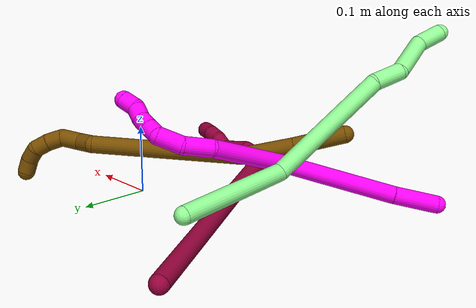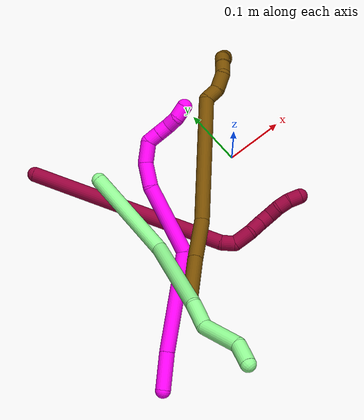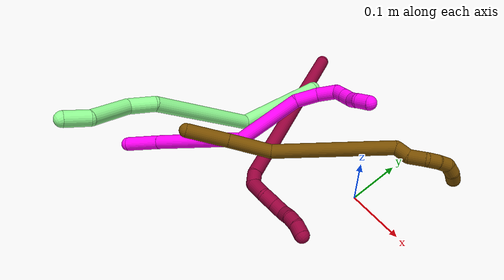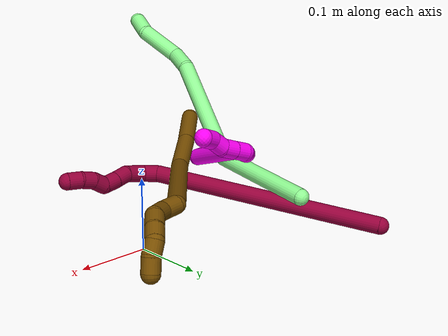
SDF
<sdf version="1.7">
 <world name="default">
  <model name="8">
   <static>0</static>
   <link name="8">
    <collision name="collision-cylinder-e_1_1_4">
     <pose>0.077361 -0.136743 -0.065512 2.01757 0.471779 0.72923</pose>
     <geometry><cylinder><radius>0.0125</radius><length>0.340442</length></cylinder></geometry>
     <surface>
      <friction><ode><mu>1.16</mu><mu2>1.16</mu2><slip1>0</slip1><slip2>0</slip2></ode></friction>
      <contact><ode><kp>1e+06</kp><kd>1</kd><max_vel>0</max_vel><min_depth>0.001</min_depth></ode></contact>
     </surface>
    </collision>
    <visual name="visual-cylinder-e_1_1_4">
     <pose>0.077361 -0.136743 -0.065512 2.01757 0.471779 0.72923</pose>
     <geometry><cylinder><radius>0.0125</radius><length>0.340442</length></cylinder></geometry>
     <material><ambient>0.584314 0 0.227451 1</ambient></material>
    </visual>
    <collision name="collision-cylinder-e_2_4_5">
     <pose>0.158897 -0.280395 -0.138519 2.39689 0.388807 0.93386</pose>
     <geometry><cylinder><radius>0.0125</radius><length>0.022031</length></cylinder></geometry>
     <surface>
      <friction><ode><mu>1.16</mu><mu2>1.16</mu2><slip1>0</slip1><slip2>0</slip2></ode></friction>
      <contact><ode><kp>1e+06</kp><kd>1</kd><max_vel>0</max_vel><min_depth>0.001</min_depth></ode></contact>
     </surface>
    </collision>
    <visual name="visual-cylinder-e_2_4_5">
     <pose>0.158897 -0.280395 -0.138519 2.39689 0.388807 0.93386</pose>
     <geometry><cylinder><radius>0.0125</radius><length>0.022031</length></cylinder></geometry>
     <material><ambient>0.584314 0 0.227451 1</ambient></material>
    </visual>
    <collision name="collision-cylinder-e_3_5_6">
     <pose>0.17007 -0.286715 -0.160014 -3.09963 0.463102 -2.96404</pose>
     <geometry><cylinder><radius>0.0125</radius><length>0.031325</length></cylinder></geometry>
     <surface>
      <friction><ode><mu>1.16</mu><mu2>1.16</mu2><slip1>0</slip1><slip2>0</slip2></ode></friction>
      <contact><ode><kp>1e+06</kp><kd>1</kd><max_vel>0</max_vel><min_depth>0.001</min_depth></ode></contact>
     </surface>
    </collision>
    <visual name="visual-cylinder-e_3_5_6">
     <pose>0.17007 -0.286715 -0.160014 -3.09963 0.463102 -2.96404</pose>
     <geometry><cylinder><radius>0.0125</radius><length>0.031325</length></cylinder></geometry>
     <material><ambient>0.584314 0 0.227451 1</ambient></material>
    </visual>
    <collision name="collision-cylinder-e_4_6_7">
     <pose>0.177823 -0.284603 -0.185403 -3.00855 0.06578 -0.917495</pose>
     <geometry><cylinder><radius>0.0125</radius><length>0.02303</length></cylinder></geometry>
     <surface>
      <friction><ode><mu>1.16</mu><mu2>1.16</mu2><slip1>0</slip1><slip2>0</slip2></ode></friction>
      <contact><ode><kp>1e+06</kp><kd>1</kd><max_vel>0</max_vel><min_depth>0.001</min_depth></ode></contact>
     </surface>
    </collision>
    <visual name="visual-cylinder-e_4_6_7">
     <pose>0.177823 -0.284603 -0.185403 -3.00855 0.06578 -0.917495</pose>
     <geometry><cylinder><radius>0.0125</radius><length>0.02303</length></cylinder></geometry>
     <material><ambient>0.584314 0 0.227451 1</ambient></material>
    </visual>
    <collision name="collision-cylinder-e_5_7_8">
     <pose>0.180022 -0.281955 -0.207766 -3.0395 0.129922 -1.81006</pose>
     <geometry><cylinder><radius>0.0125</radius><length>0.02225</length></cylinder></geometry>
     <surface>
      <friction><ode><mu>1.16</mu><mu2>1.16</mu2><slip1>0</slip1><slip2>0</slip2></ode></friction>
      <contact><ode><kp>1e+06</kp><kd>1</kd><max_vel>0</max_vel><min_depth>0.001</min_depth></ode></contact>
     </surface>
    </collision>
    <visual name="visual-cylinder-e_5_7_8">
     <pose>0.180022 -0.281955 -0.207766 -3.0395 0.129922 -1.81006</pose>
     <geometry><cylinder><radius>0.0125</radius><length>0.02225</length></cylinder></geometry>
     <material><ambient>0.584314 0 0.227451 1</ambient></material>
    </visual>
    <collision name="collision-cylinder-e_6_8_9">
     <pose>0.18902 -0.279809 -0.225497 -2.9915 0.835571 -2.80603</pose>
     <geometry><cylinder><radius>0.0125</radius><length>0.02038</length></cylinder></geometry>
     <surface>
      <friction><ode><mu>1.16</mu><mu2>1.16</mu2><slip1>0</slip1><slip2>0</slip2></ode></friction>
      <contact><ode><kp>1e+06</kp><kd>1</kd><max_vel>0</max_vel><min_depth>0.001</min_depth></ode></contact>
     </surface>
    </collision>
    <visual name="visual-cylinder-e_6_8_9">
     <pose>0.18902 -0.279809 -0.225497 -2.9915 0.835571 -2.80603</pose>
     <geometry><cylinder><radius>0.0125</radius><length>0.02038</length></cylinder></geometry>
     <material><ambient>0.584314 0 0.227451 1</ambient></material>
    </visual>
    <collision name="collision-cylinder-e_7_9_10">
     <pose>0.201617 -0.278927 -0.240933 3.12547 0.526027 3.08172</pose>
     <geometry><cylinder><radius>0.0125</radius><length>0.02007</length></cylinder></geometry>
     <surface>
      <friction><ode><mu>1.16</mu><mu2>1.16</mu2><slip1>0</slip1><slip2>0</slip2></ode></friction>
      <contact><ode><kp>1e+06</kp><kd>1</kd><max_vel>0</max_vel><min_depth>0.001</min_depth></ode></contact>
     </surface>
    </collision>
    <visual name="visual-cylinder-e_7_9_10">
     <pose>0.201617 -0.278927 -0.240933 3.12547 0.526027 3.08172</pose>
     <geometry><cylinder><radius>0.0125</radius><length>0.02007</length></cylinder></geometry>
     <material><ambient>0.584314 0 0.227451 1</ambient></material>
    </visual>
    <collision name="collision-cylinder-e_8_10_2">
     <pose>0.210307 -0.281248 -0.25892 2.91141 0.364824 2.02197</pose>
     <geometry><cylinder><radius>0.0125</radius><length>0.020473</length></cylinder></geometry>
     <surface>
      <friction><ode><mu>1.16</mu><mu2>1.16</mu2><slip1>0</slip1><slip2>0</slip2></ode></friction>
      <contact><ode><kp>1e+06</kp><kd>1</kd><max_vel>0</max_vel><min_depth>0.001</min_depth></ode></contact>
     </surface>
    </collision>
    <visual name="visual-cylinder-e_8_10_2">
     <pose>0.210307 -0.281248 -0.25892 2.91141 0.364824 2.02197</pose>
     <geometry><cylinder><radius>0.0125</radius><length>0.020473</length></cylinder></geometry>
     <material><ambient>0.584314 0 0.227451 1</ambient></material>
    </visual>
    <collision name="collision-sphere-2">
     <pose>0.21396 -0.28343 -0.268231 0 -0 0</pose>
     <geometry><sphere><radius>0.0125</radius></sphere></geometry>
     <surface>
      <friction><ode><mu>1.16</mu><mu2>1.16</mu2><slip1>0</slip1><slip2>0</slip2></ode></friction>
      <contact><ode><kp>1e+06</kp><kd>1</kd><max_vel>0</max_vel><min_depth>0.001</min_depth></ode></contact>
     </surface>
    </collision>
    <visual name="visual-sphere-2">
     <pose>0.21396 -0.28343 -0.268231 0 -0 0</pose>
     <geometry><sphere><radius>0.0125</radius></sphere></geometry>
     <material><ambient>0.584314 0 0.227451 1</ambient></material>
    </visual>
    <collision name="collision-sphere-10">
     <pose>0.206655 -0.279067 -0.24961 0 -0 0</pose>
     <geometry><sphere><radius>0.0125</radius></sphere></geometry>
     <surface>
      <friction><ode><mu>1.16</mu><mu2>1.16</mu2><slip1>0</slip1><slip2>0</slip2></ode></friction>
      <contact><ode><kp>1e+06</kp><kd>1</kd><max_vel>0</max_vel><min_depth>0.001</min_depth></ode></contact>
     </surface>
    </collision>
    <visual name="visual-sphere-10">
     <pose>0.206655 -0.279067 -0.24961 0 -0 0</pose>
     <geometry><sphere><radius>0.0125</radius></sphere></geometry>
     <material><ambient>0.584314 0 0.227451 1</ambient></material>
    </visual>
    <collision name="collision-sphere-9">
     <pose>0.196578 -0.278787 -0.232255 0 -0 0</pose>
     <geometry><sphere><radius>0.0125</radius></sphere></geometry>
     <surface>
      <friction><ode><mu>1.16</mu><mu2>1.16</mu2><slip1>0</slip1><slip2>0</slip2></ode></friction>
      <contact><ode><kp>1e+06</kp><kd>1</kd><max_vel>0</max_vel><min_depth>0.001</min_depth></ode></contact>
     </surface>
    </collision>
    <visual name="visual-sphere-9">
     <pose>0.196578 -0.278787 -0.232255 0 -0 0</pose>
     <geometry><sphere><radius>0.0125</radius></sphere></geometry>
     <material><ambient>0.584314 0 0.227451 1</ambient></material>
    </visual>
    <collision name="collision-sphere-4">
     <pose>0.154721 -0.273486 -0.131024 0 -0 0</pose>
     <geometry><sphere><radius>0.0125</radius></sphere></geometry>
     <surface>
      <friction><ode><mu>1.16</mu><mu2>1.16</mu2><slip1>0</slip1><slip2>0</slip2></ode></friction>
      <contact><ode><kp>1e+06</kp><kd>1</kd><max_vel>0</max_vel><min_depth>0.001</min_depth></ode></contact>
     </surface>
    </collision>
    <visual name="visual-sphere-4">
     <pose>0.154721 -0.273486 -0.131024 0 -0 0</pose>
     <geometry><sphere><radius>0.0125</radius></sphere></geometry>
     <material><ambient>0.584314 0 0.227451 1</ambient></material>
    </visual>
    <collision name="collision-sphere-1">
     <geometry><sphere><radius>0.0125</radius></sphere></geometry>
     <surface>
      <friction><ode><mu>1.16</mu><mu2>1.16</mu2><slip1>0</slip1><slip2>0</slip2></ode></friction>
      <contact><ode><kp>1e+06</kp><kd>1</kd><max_vel>0</max_vel><min_depth>0.001</min_depth></ode></contact>
     </surface>
    </collision>
    <visual name="visual-sphere-1">
     <geometry><sphere><radius>0.0125</radius></sphere></geometry>
     <material><ambient>0.584314 0 0.227451 1</ambient></material>
    </visual>
    <collision name="collision-sphere-8">
     <pose>0.181463 -0.280831 -0.218739 0 -0 0</pose>
     <geometry><sphere><radius>0.0125</radius></sphere></geometry>
     <surface>
      <friction><ode><mu>1.16</mu><mu2>1.16</mu2><slip1>0</slip1><slip2>0</slip2></ode></friction>
      <contact><ode><kp>1e+06</kp><kd>1</kd><max_vel>0</max_vel><min_depth>0.001</min_depth></ode></contact>
     </surface>
    </collision>
    <visual name="visual-sphere-8">
     <pose>0.181463 -0.280831 -0.218739 0 -0 0</pose>
     <geometry><sphere><radius>0.0125</radius></sphere></geometry>
     <material><ambient>0.584314 0 0.227451 1</ambient></material>
    </visual>
    <collision name="collision-sphere-5">
     <pose>0.163073 -0.287303 -0.146014 0 -0 0</pose>
     <geometry><sphere><radius>0.0125</radius></sphere></geometry>
     <surface>
      <friction><ode><mu>1.16</mu><mu2>1.16</mu2><slip1>0</slip1><slip2>0</slip2></ode></friction>
      <contact><ode><kp>1e+06</kp><kd>1</kd><max_vel>0</max_vel><min_depth>0.001</min_depth></ode></contact>
     </surface>
    </collision>
    <visual name="visual-sphere-5">
     <pose>0.163073 -0.287303 -0.146014 0 -0 0</pose>
     <geometry><sphere><radius>0.0125</radius></sphere></geometry>
     <material><ambient>0.584314 0 0.227451 1</ambient></material>
    </visual>
    <collision name="collision-sphere-6">
     <pose>0.177066 -0.286128 -0.174015 0 -0 0</pose>
     <geometry><sphere><radius>0.0125</radius></sphere></geometry>
     <surface>
      <friction><ode><mu>1.16</mu><mu2>1.16</mu2><slip1>0</slip1><slip2>0</slip2></ode></friction>
      <contact><ode><kp>1e+06</kp><kd>1</kd><max_vel>0</max_vel><min_depth>0.001</min_depth></ode></contact>
     </surface>
    </collision>
    <visual name="visual-sphere-6">
     <pose>0.177066 -0.286128 -0.174015 0 -0 0</pose>
     <geometry><sphere><radius>0.0125</radius></sphere></geometry>
     <material><ambient>0.584314 0 0.227451 1</ambient></material>
    </visual>
    <collision name="collision-sphere-7">
     <pose>0.17858 -0.283079 -0.196792 0 -0 0</pose>
     <geometry><sphere><radius>0.0125</radius></sphere></geometry>
     <surface>
      <friction><ode><mu>1.16</mu><mu2>1.16</mu2><slip1>0</slip1><slip2>0</slip2></ode></friction>
      <contact><ode><kp>1e+06</kp><kd>1</kd><max_vel>0</max_vel><min_depth>0.001</min_depth></ode></contact>
     </surface>
    </collision>
    <visual name="visual-sphere-7">
     <pose>0.17858 -0.283079 -0.196792 0 -0 0</pose>
     <geometry><sphere><radius>0.0125</radius></sphere></geometry>
     <material><ambient>0.584314 0 0.227451 1</ambient></material>
    </visual>
    <inertial>
     <pose>0.11094 -0.183196 -0.107983 0 -0 0</pose>
     <mass>0.5</mass>
     <inertia>
      <ixx>0.004163</ixx>
      <ixy>0</ixy>
      <ixz>0</ixz>
      <iyy>0.00178</iyy>
      <iyz>0</iyz>
      <izz>0.001126</izz>
     </inertia>
    </inertial>
   </link>
   <pose>-0.27757 0.182324 0.01149 0.780295 -1.18872 -0.803623</pose>
  </model>
  <model name="10">
   <static>0</static>
   <link name="10">
    <collision name="collision-cylinder-e_1_1_4">
     <pose>0.0177 0.024694 0.004187 -1.40282 0.615198 -0.524341</pose>
     <geometry><cylinder><radius>0.0125</radius><length>0.06134</length></cylinder></geometry>
     <surface>
      <friction><ode><mu>1.16</mu><mu2>1.16</mu2><slip1>0</slip1><slip2>0</slip2></ode></friction>
      <contact><ode><kp>1e+06</kp><kd>1</kd><max_vel>0</max_vel><min_depth>0.001</min_depth></ode></contact>
     </surface>
    </collision>
    <visual name="visual-cylinder-e_1_1_4">
     <pose>0.0177 0.024694 0.004187 -1.40282 0.615198 -0.524341</pose>
     <geometry><cylinder><radius>0.0125</radius><length>0.06134</length></cylinder></geometry>
     <material><ambient>1 0 0.964706 1</ambient></material>
    </visual>
    <collision name="collision-cylinder-e_2_4_5">
     <pose>0.077181 0.118284 0.020442 -1.39741 0.53847 -0.455565</pose>
     <geometry><cylinder><radius>0.0125</radius><length>0.162946</length></cylinder></geometry>
     <surface>
      <friction><ode><mu>1.16</mu><mu2>1.16</mu2><slip1>0</slip1><slip2>0</slip2></ode></friction>
      <contact><ode><kp>1e+06</kp><kd>1</kd><max_vel>0</max_vel><min_depth>0.001</min_depth></ode></contact>
     </surface>
    </collision>
    <visual name="visual-cylinder-e_2_4_5">
     <pose>0.077181 0.118284 0.020442 -1.39741 0.53847 -0.455565</pose>
     <geometry><cylinder><radius>0.0125</radius><length>0.162946</length></cylinder></geometry>
     <material><ambient>1 0 0.964706 1</ambient></material>
    </visual>
    <collision name="collision-cylinder-e_3_5_6">
     <pose>0.163495 0.21867 0.011254 -2.16451 0.864478 -1.42965</pose>
     <geometry><cylinder><radius>0.0125</radius><length>0.117074</length></cylinder></geometry>
     <surface>
      <friction><ode><mu>1.16</mu><mu2>1.16</mu2><slip1>0</slip1><slip2>0</slip2></ode></friction>
      <contact><ode><kp>1e+06</kp><kd>1</kd><max_vel>0</max_vel><min_depth>0.001</min_depth></ode></contact>
     </surface>
    </collision>
    <visual name="visual-cylinder-e_3_5_6">
     <pose>0.163495 0.21867 0.011254 -2.16451 0.864478 -1.42965</pose>
     <geometry><cylinder><radius>0.0125</radius><length>0.117074</length></cylinder></geometry>
     <material><ambient>1 0 0.964706 1</ambient></material>
    </visual>
    <collision name="collision-cylinder-e_4_6_7">
     <pose>0.223498 0.263102 -0.011015 -1.64899 0.872674 -0.934135</pose>
     <geometry><cylinder><radius>0.0125</radius><length>0.040391</length></cylinder></geometry>
     <surface>
      <friction><ode><mu>1.16</mu><mu2>1.16</mu2><slip1>0</slip1><slip2>0</slip2></ode></friction>
      <contact><ode><kp>1e+06</kp><kd>1</kd><max_vel>0</max_vel><min_depth>0.001</min_depth></ode></contact>
     </surface>
    </collision>
    <visual name="visual-cylinder-e_4_6_7">
     <pose>0.223498 0.263102 -0.011015 -1.64899 0.872674 -0.934135</pose>
     <geometry><cylinder><radius>0.0125</radius><length>0.040391</length></cylinder></geometry>
     <material><ambient>1 0 0.964706 1</ambient></material>
    </visual>
    <collision name="collision-cylinder-e_5_7_8">
     <pose>0.247329 0.291487 -0.011215 -1.51814 0.495592 -0.471115</pose>
     <geometry><cylinder><radius>0.0125</radius><length>0.03516</length></cylinder></geometry>
     <surface>
      <friction><ode><mu>1.16</mu><mu2>1.16</mu2><slip1>0</slip1><slip2>0</slip2></ode></friction>
      <contact><ode><kp>1e+06</kp><kd>1</kd><max_vel>0</max_vel><min_depth>0.001</min_depth></ode></contact>
     </surface>
    </collision>
    <visual name="visual-cylinder-e_5_7_8">
     <pose>0.247329 0.291487 -0.011215 -1.51814 0.495592 -0.471115</pose>
     <geometry><cylinder><radius>0.0125</radius><length>0.03516</length></cylinder></geometry>
     <material><ambient>1 0 0.964706 1</ambient></material>
    </visual>
    <collision name="collision-cylinder-e_6_8_9">
     <pose>0.253942 0.315961 -0.006214 -1.13668 -0.173775 0.111144</pose>
     <geometry><cylinder><radius>0.0125</radius><length>0.020211</length></cylinder></geometry>
     <surface>
      <friction><ode><mu>1.16</mu><mu2>1.16</mu2><slip1>0</slip1><slip2>0</slip2></ode></friction>
      <contact><ode><kp>1e+06</kp><kd>1</kd><max_vel>0</max_vel><min_depth>0.001</min_depth></ode></contact>
     </surface>
    </collision>
    <visual name="visual-cylinder-e_6_8_9">
     <pose>0.253942 0.315961 -0.006214 -1.13668 -0.173775 0.111144</pose>
     <geometry><cylinder><radius>0.0125</radius><length>0.020211</length></cylinder></geometry>
     <material><ambient>1 0 0.964706 1</ambient></material>
    </visual>
    <collision name="collision-cylinder-e_7_9_10">
     <pose>0.250199 0.334204 0.002126 -1.14722 -0.194986 0.126207</pose>
     <geometry><cylinder><radius>0.0125</radius><length>0.020604</length></cylinder></geometry>
     <surface>
      <friction><ode><mu>1.16</mu><mu2>1.16</mu2><slip1>0</slip1><slip2>0</slip2></ode></friction>
      <contact><ode><kp>1e+06</kp><kd>1</kd><max_vel>0</max_vel><min_depth>0.001</min_depth></ode></contact>
     </surface>
    </collision>
    <visual name="visual-cylinder-e_7_9_10">
     <pose>0.250199 0.334204 0.002126 -1.14722 -0.194986 0.126207</pose>
     <geometry><cylinder><radius>0.0125</radius><length>0.020604</length></cylinder></geometry>
     <material><ambient>1 0 0.964706 1</ambient></material>
    </visual>
    <collision name="collision-cylinder-e_8_10_11">
     <pose>0.24481 0.352799 0.007182 -1.47499 -0.345503 0.314436</pose>
     <geometry><cylinder><radius>0.0125</radius><length>0.020033</length></cylinder></geometry>
     <surface>
      <friction><ode><mu>1.16</mu><mu2>1.16</mu2><slip1>0</slip1><slip2>0</slip2></ode></friction>
      <contact><ode><kp>1e+06</kp><kd>1</kd><max_vel>0</max_vel><min_depth>0.001</min_depth></ode></contact>
     </surface>
    </collision>
    <visual name="visual-cylinder-e_8_10_11">
     <pose>0.24481 0.352799 0.007182 -1.47499 -0.345503 0.314436</pose>
     <geometry><cylinder><radius>0.0125</radius><length>0.020033</length></cylinder></geometry>
     <material><ambient>1 0 0.964706 1</ambient></material>
    </visual>
    <collision name="collision-cylinder-e_9_11_2">
     <pose>0.242497 0.372787 0.011249 -1.28073 0.097153 -0.072415</pose>
     <geometry><cylinder><radius>0.0125</radius><length>0.022242</length></cylinder></geometry>
     <surface>
      <friction><ode><mu>1.16</mu><mu2>1.16</mu2><slip1>0</slip1><slip2>0</slip2></ode></friction>
      <contact><ode><kp>1e+06</kp><kd>1</kd><max_vel>0</max_vel><min_depth>0.001</min_depth></ode></contact>
     </surface>
    </collision>
    <visual name="visual-cylinder-e_9_11_2">
     <pose>0.242497 0.372787 0.011249 -1.28073 0.097153 -0.072415</pose>
     <geometry><cylinder><radius>0.0125</radius><length>0.022242</length></cylinder></geometry>
     <material><ambient>1 0 0.964706 1</ambient></material>
    </visual>
    <collision name="collision-sphere-2">
     <pose>0.243576 0.383393 0.014415 0 -0 0</pose>
     <geometry><sphere><radius>0.0125</radius></sphere></geometry>
     <surface>
      <friction><ode><mu>1.16</mu><mu2>1.16</mu2><slip1>0</slip1><slip2>0</slip2></ode></friction>
      <contact><ode><kp>1e+06</kp><kd>1</kd><max_vel>0</max_vel><min_depth>0.001</min_depth></ode></contact>
     </surface>
    </collision>
    <visual name="visual-sphere-2">
     <pose>0.243576 0.383393 0.014415 0 -0 0</pose>
     <geometry><sphere><radius>0.0125</radius></sphere></geometry>
     <material><ambient>1 0 0.964706 1</ambient></material>
    </visual>
    <collision name="collision-sphere-11">
     <pose>0.241418 0.362181 0.008083 0 -0 0</pose>
     <geometry><sphere><radius>0.0125</radius></sphere></geometry>
     <surface>
      <friction><ode><mu>1.16</mu><mu2>1.16</mu2><slip1>0</slip1><slip2>0</slip2></ode></friction>
      <contact><ode><kp>1e+06</kp><kd>1</kd><max_vel>0</max_vel><min_depth>0.001</min_depth></ode></contact>
     </surface>
    </collision>
    <visual name="visual-sphere-11">
     <pose>0.241418 0.362181 0.008083 0 -0 0</pose>
     <geometry><sphere><radius>0.0125</radius></sphere></geometry>
     <material><ambient>1 0 0.964706 1</ambient></material>
    </visual>
    <collision name="collision-sphere-10">
     <pose>0.248203 0.343418 0.00628 0 -0 0</pose>
     <geometry><sphere><radius>0.0125</radius></sphere></geometry>
     <surface>
      <friction><ode><mu>1.16</mu><mu2>1.16</mu2><slip1>0</slip1><slip2>0</slip2></ode></friction>
      <contact><ode><kp>1e+06</kp><kd>1</kd><max_vel>0</max_vel><min_depth>0.001</min_depth></ode></contact>
     </surface>
    </collision>
    <visual name="visual-sphere-10">
     <pose>0.248203 0.343418 0.00628 0 -0 0</pose>
     <geometry><sphere><radius>0.0125</radius></sphere></geometry>
     <material><ambient>1 0 0.964706 1</ambient></material>
    </visual>
    <collision name="collision-sphere-9">
     <pose>0.252195 0.324991 -0.002028 0 -0 0</pose>
     <geometry><sphere><radius>0.0125</radius></sphere></geometry>
     <surface>
      <friction><ode><mu>1.16</mu><mu2>1.16</mu2><slip1>0</slip1><slip2>0</slip2></ode></friction>
      <contact><ode><kp>1e+06</kp><kd>1</kd><max_vel>0</max_vel><min_depth>0.001</min_depth></ode></contact>
     </surface>
    </collision>
    <visual name="visual-sphere-9">
     <pose>0.252195 0.324991 -0.002028 0 -0 0</pose>
     <geometry><sphere><radius>0.0125</radius></sphere></geometry>
     <material><ambient>1 0 0.964706 1</ambient></material>
    </visual>
    <collision name="collision-sphere-4">
     <pose>0.0354 0.049389 0.008375 0 -0 0</pose>
     <geometry><sphere><radius>0.0125</radius></sphere></geometry>
     <surface>
      <friction><ode><mu>1.16</mu><mu2>1.16</mu2><slip1>0</slip1><slip2>0</slip2></ode></friction>
      <contact><ode><kp>1e+06</kp><kd>1</kd><max_vel>0</max_vel><min_depth>0.001</min_depth></ode></contact>
     </surface>
    </collision>
    <visual name="visual-sphere-4">
     <pose>0.0354 0.049389 0.008375 0 -0 0</pose>
     <geometry><sphere><radius>0.0125</radius></sphere></geometry>
     <material><ambient>1 0 0.964706 1</ambient></material>
    </visual>
    <collision name="collision-sphere-1">
     <geometry><sphere><radius>0.0125</radius></sphere></geometry>
     <surface>
      <friction><ode><mu>1.16</mu><mu2>1.16</mu2><slip1>0</slip1><slip2>0</slip2></ode></friction>
      <contact><ode><kp>1e+06</kp><kd>1</kd><max_vel>0</max_vel><min_depth>0.001</min_depth></ode></contact>
     </surface>
    </collision>
    <visual name="visual-sphere-1">
     <geometry><sphere><radius>0.0125</radius></sphere></geometry>
     <material><ambient>1 0 0.964706 1</ambient></material>
    </visual>
    <collision name="collision-sphere-8">
     <pose>0.255689 0.306931 -0.010401 0 -0 0</pose>
     <geometry><sphere><radius>0.0125</radius></sphere></geometry>
     <surface>
      <friction><ode><mu>1.16</mu><mu2>1.16</mu2><slip1>0</slip1><slip2>0</slip2></ode></friction>
      <contact><ode><kp>1e+06</kp><kd>1</kd><max_vel>0</max_vel><min_depth>0.001</min_depth></ode></contact>
     </surface>
    </collision>
    <visual name="visual-sphere-8">
     <pose>0.255689 0.306931 -0.010401 0 -0 0</pose>
     <geometry><sphere><radius>0.0125</radius></sphere></geometry>
     <material><ambient>1 0 0.964706 1</ambient></material>
    </visual>
    <collision name="collision-sphere-5">
     <pose>0.118963 0.187179 0.032509 0 -0 0</pose>
     <geometry><sphere><radius>0.0125</radius></sphere></geometry>
     <surface>
      <friction><ode><mu>1.16</mu><mu2>1.16</mu2><slip1>0</slip1><slip2>0</slip2></ode></friction>
      <contact><ode><kp>1e+06</kp><kd>1</kd><max_vel>0</max_vel><min_depth>0.001</min_depth></ode></contact>
     </surface>
    </collision>
    <visual name="visual-sphere-5">
     <pose>0.118963 0.187179 0.032509 0 -0 0</pose>
     <geometry><sphere><radius>0.0125</radius></sphere></geometry>
     <material><ambient>1 0 0.964706 1</ambient></material>
    </visual>
    <collision name="collision-sphere-6">
     <pose>0.208027 0.250161 -0.01 0 -0 0</pose>
     <geometry><sphere><radius>0.0125</radius></sphere></geometry>
     <surface>
      <friction><ode><mu>1.16</mu><mu2>1.16</mu2><slip1>0</slip1><slip2>0</slip2></ode></friction>
      <contact><ode><kp>1e+06</kp><kd>1</kd><max_vel>0</max_vel><min_depth>0.001</min_depth></ode></contact>
     </surface>
    </collision>
    <visual name="visual-sphere-6">
     <pose>0.208027 0.250161 -0.01 0 -0 0</pose>
     <geometry><sphere><radius>0.0125</radius></sphere></geometry>
     <material><ambient>1 0 0.964706 1</ambient></material>
    </visual>
    <collision name="collision-sphere-7">
     <pose>0.238969 0.276044 -0.012029 0 -0 0</pose>
     <geometry><sphere><radius>0.0125</radius></sphere></geometry>
     <surface>
      <friction><ode><mu>1.16</mu><mu2>1.16</mu2><slip1>0</slip1><slip2>0</slip2></ode></friction>
      <contact><ode><kp>1e+06</kp><kd>1</kd><max_vel>0</max_vel><min_depth>0.001</min_depth></ode></contact>
     </surface>
    </collision>
    <visual name="visual-sphere-7">
     <pose>0.238969 0.276044 -0.012029 0 -0 0</pose>
     <geometry><sphere><radius>0.0125</radius></sphere></geometry>
     <material><ambient>1 0 0.964706 1</ambient></material>
    </visual>
    <inertial>
     <pose>0.142224 0.191791 0.008757 0 -0 0</pose>
     <mass>0.5</mass>
     <inertia>
      <ixx>0.000101</ixx>
      <ixy>0</ixy>
      <ixz>0</ixz>
      <iyy>1.9e-05</iyy>
      <iyz>0</iyz>
      <izz>-0.000728</izz>
     </inertia>
    </inertial>
   </link>
   <pose>-0.351676 -0.244955 0.012164 2.41277 0.346281 1.56046</pose>
  </model>
  <model name="12">
   <static>0</static>
   <link name="12">
    <collision name="collision-cylinder-e_1_1_4">
     <pose>0.02287 0.023275 0.017306 -0.931429 0.667711 -0.345165</pose>
     <geometry><cylinder><radius>0.0125</radius><length>0.073871</length></cylinder></geometry>
     <surface>
      <friction><ode><mu>1.16</mu><mu2>1.16</mu2><slip1>0</slip1><slip2>0</slip2></ode></friction>
      <contact><ode><kp>1e+06</kp><kd>1</kd><max_vel>0</max_vel><min_depth>0.001</min_depth></ode></contact>
     </surface>
    </collision>
    <visual name="visual-cylinder-e_1_1_4">
     <pose>0.02287 0.023275 0.017306 -0.931429 0.667711 -0.345165</pose>
     <geometry><cylinder><radius>0.0125</radius><length>0.073871</length></cylinder></geometry>
     <material><ambient>0.466667 0.301961 0 1</ambient></material>
    </visual>
    <collision name="collision-cylinder-e_2_4_5">
     <pose>0.06847 0.071735 0.051286 -0.986013 0.645117 -0.355349</pose>
     <geometry><cylinder><radius>0.0125</radius><length>0.075603</length></cylinder></geometry>
     <surface>
      <friction><ode><mu>1.16</mu><mu2>1.16</mu2><slip1>0</slip1><slip2>0</slip2></ode></friction>
      <contact><ode><kp>1e+06</kp><kd>1</kd><max_vel>0</max_vel><min_depth>0.001</min_depth></ode></contact>
     </surface>
    </collision>
    <visual name="visual-cylinder-e_2_4_5">
     <pose>0.06847 0.071735 0.051286 -0.986013 0.645117 -0.355349</pose>
     <geometry><cylinder><radius>0.0125</radius><length>0.075603</length></cylinder></geometry>
     <material><ambient>0.466667 0.301961 0 1</ambient></material>
    </visual>
    <collision name="collision-cylinder-e_3_5_6">
     <pose>0.172613 0.163323 0.08431 -1.32936 0.87214 -0.700235</pose>
     <geometry><cylinder><radius>0.0125</radius><length>0.212648</length></cylinder></geometry>
     <surface>
      <friction><ode><mu>1.16</mu><mu2>1.16</mu2><slip1>0</slip1><slip2>0</slip2></ode></friction>
      <contact><ode><kp>1e+06</kp><kd>1</kd><max_vel>0</max_vel><min_depth>0.001</min_depth></ode></contact>
     </surface>
    </collision>
    <visual name="visual-cylinder-e_3_5_6">
     <pose>0.172613 0.163323 0.08431 -1.32936 0.87214 -0.700235</pose>
     <geometry><cylinder><radius>0.0125</radius><length>0.212648</length></cylinder></geometry>
     <material><ambient>0.466667 0.301961 0 1</ambient></material>
    </visual>
    <collision name="collision-cylinder-e_4_6_7">
     <pose>0.255605 0.242123 0.102994 -1.38481 0.124499 -0.1033</pose>
     <geometry><cylinder><radius>0.0125</radius><length>0.025425</length></cylinder></geometry>
     <surface>
      <friction><ode><mu>1.16</mu><mu2>1.16</mu2><slip1>0</slip1><slip2>0</slip2></ode></friction>
      <contact><ode><kp>1e+06</kp><kd>1</kd><max_vel>0</max_vel><min_depth>0.001</min_depth></ode></contact>
     </surface>
    </collision>
    <visual name="visual-cylinder-e_4_6_7">
     <pose>0.255605 0.242123 0.102994 -1.38481 0.124499 -0.1033</pose>
     <geometry><cylinder><radius>0.0125</radius><length>0.025425</length></cylinder></geometry>
     <material><ambient>0.466667 0.301961 0 1</ambient></material>
    </visual>
    <collision name="collision-cylinder-e_5_7_8">
     <pose>0.265453 0.2666 0.106336 -1.48742 0.598661 -0.553222</pose>
     <geometry><cylinder><radius>0.0125</radius><length>0.029349</length></cylinder></geometry>
     <surface>
      <friction><ode><mu>1.16</mu><mu2>1.16</mu2><slip1>0</slip1><slip2>0</slip2></ode></friction>
      <contact><ode><kp>1e+06</kp><kd>1</kd><max_vel>0</max_vel><min_depth>0.001</min_depth></ode></contact>
     </surface>
    </collision>
    <visual name="visual-cylinder-e_5_7_8">
     <pose>0.265453 0.2666 0.106336 -1.48742 0.598661 -0.553222</pose>
     <geometry><cylinder><radius>0.0125</radius><length>0.029349</length></cylinder></geometry>
     <material><ambient>0.466667 0.301961 0 1</ambient></material>
    </visual>
    <collision name="collision-cylinder-e_6_8_9">
     <pose>0.281025 0.284654 0.113259 -0.790432 0.715246 -0.309293</pose>
     <geometry><cylinder><radius>0.0125</radius><length>0.022268</length></cylinder></geometry>
     <surface>
      <friction><ode><mu>1.16</mu><mu2>1.16</mu2><slip1>0</slip1><slip2>0</slip2></ode></friction>
      <contact><ode><kp>1e+06</kp><kd>1</kd><max_vel>0</max_vel><min_depth>0.001</min_depth></ode></contact>
     </surface>
    </collision>
    <visual name="visual-cylinder-e_6_8_9">
     <pose>0.281025 0.284654 0.113259 -0.790432 0.715246 -0.309293</pose>
     <geometry><cylinder><radius>0.0125</radius><length>0.022268</length></cylinder></geometry>
     <material><ambient>0.466667 0.301961 0 1</ambient></material>
    </visual>
    <collision name="collision-cylinder-e_7_9_10">
     <pose>0.294209 0.295349 0.125976 -0.606653 0.617612 -0.199032</pose>
     <geometry><cylinder><radius>0.0125</radius><length>0.020315</length></cylinder></geometry>
     <surface>
      <friction><ode><mu>1.16</mu><mu2>1.16</mu2><slip1>0</slip1><slip2>0</slip2></ode></friction>
      <contact><ode><kp>1e+06</kp><kd>1</kd><max_vel>0</max_vel><min_depth>0.001</min_depth></ode></contact>
     </surface>
    </collision>
    <visual name="visual-cylinder-e_7_9_10">
     <pose>0.294209 0.295349 0.125976 -0.606653 0.617612 -0.199032</pose>
     <geometry><cylinder><radius>0.0125</radius><length>0.020315</length></cylinder></geometry>
     <material><ambient>0.466667 0.301961 0 1</ambient></material>
    </visual>
    <collision name="collision-cylinder-e_8_10_11">
     <pose>0.300992 0.304206 0.141934 -0.42435 0.089472 -0.019286</pose>
     <geometry><cylinder><radius>0.0125</radius><length>0.020172</length></cylinder></geometry>
     <surface>
      <friction><ode><mu>1.16</mu><mu2>1.16</mu2><slip1>0</slip1><slip2>0</slip2></ode></friction>
      <contact><ode><kp>1e+06</kp><kd>1</kd><max_vel>0</max_vel><min_depth>0.001</min_depth></ode></contact>
     </surface>
    </collision>
    <visual name="visual-cylinder-e_8_10_11">
     <pose>0.300992 0.304206 0.141934 -0.42435 0.089472 -0.019286</pose>
     <geometry><cylinder><radius>0.0125</radius><length>0.020172</length></cylinder></geometry>
     <material><ambient>0.466667 0.301961 0 1</ambient></material>
    </visual>
    <collision name="collision-cylinder-e_9_11_2">
     <pose>0.301933 0.309655 0.161178 -0.129387 0.003922 -0.000254</pose>
     <geometry><cylinder><radius>0.0125</radius><length>0.020347</length></cylinder></geometry>
     <surface>
      <friction><ode><mu>1.16</mu><mu2>1.16</mu2><slip1>0</slip1><slip2>0</slip2></ode></friction>
      <contact><ode><kp>1e+06</kp><kd>1</kd><max_vel>0</max_vel><min_depth>0.001</min_depth></ode></contact>
     </surface>
    </collision>
    <visual name="visual-cylinder-e_9_11_2">
     <pose>0.301933 0.309655 0.161178 -0.129387 0.003922 -0.000254</pose>
     <geometry><cylinder><radius>0.0125</radius><length>0.020347</length></cylinder></geometry>
     <material><ambient>0.466667 0.301961 0 1</ambient></material>
    </visual>
    <collision name="collision-sphere-2">
     <pose>0.301973 0.310967 0.171266 0 -0 0</pose>
     <geometry><sphere><radius>0.0125</radius></sphere></geometry>
     <surface>
      <friction><ode><mu>1.16</mu><mu2>1.16</mu2><slip1>0</slip1><slip2>0</slip2></ode></friction>
      <contact><ode><kp>1e+06</kp><kd>1</kd><max_vel>0</max_vel><min_depth>0.001</min_depth></ode></contact>
     </surface>
    </collision>
    <visual name="visual-sphere-2">
     <pose>0.301973 0.310967 0.171266 0 -0 0</pose>
     <geometry><sphere><radius>0.0125</radius></sphere></geometry>
     <material><ambient>0.466667 0.301961 0 1</ambient></material>
    </visual>
    <collision name="collision-sphere-11">
     <pose>0.301893 0.308342 0.151089 0 -0 0</pose>
     <geometry><sphere><radius>0.0125</radius></sphere></geometry>
     <surface>
      <friction><ode><mu>1.16</mu><mu2>1.16</mu2><slip1>0</slip1><slip2>0</slip2></ode></friction>
      <contact><ode><kp>1e+06</kp><kd>1</kd><max_vel>0</max_vel><min_depth>0.001</min_depth></ode></contact>
     </surface>
    </collision>
    <visual name="visual-sphere-11">
     <pose>0.301893 0.308342 0.151089 0 -0 0</pose>
     <geometry><sphere><radius>0.0125</radius></sphere></geometry>
     <material><ambient>0.466667 0.301961 0 1</ambient></material>
    </visual>
    <collision name="collision-sphere-10">
     <pose>0.300091 0.30007 0.13278 0 -0 0</pose>
     <geometry><sphere><radius>0.0125</radius></sphere></geometry>
     <surface>
      <friction><ode><mu>1.16</mu><mu2>1.16</mu2><slip1>0</slip1><slip2>0</slip2></ode></friction>
      <contact><ode><kp>1e+06</kp><kd>1</kd><max_vel>0</max_vel><min_depth>0.001</min_depth></ode></contact>
     </surface>
    </collision>
    <visual name="visual-sphere-10">
     <pose>0.300091 0.30007 0.13278 0 -0 0</pose>
     <geometry><sphere><radius>0.0125</radius></sphere></geometry>
     <material><ambient>0.466667 0.301961 0 1</ambient></material>
    </visual>
    <collision name="collision-sphere-9">
     <pose>0.288327 0.290627 0.119173 0 -0 0</pose>
     <geometry><sphere><radius>0.0125</radius></sphere></geometry>
     <surface>
      <friction><ode><mu>1.16</mu><mu2>1.16</mu2><slip1>0</slip1><slip2>0</slip2></ode></friction>
      <contact><ode><kp>1e+06</kp><kd>1</kd><max_vel>0</max_vel><min_depth>0.001</min_depth></ode></contact>
     </surface>
    </collision>
    <visual name="visual-sphere-9">
     <pose>0.288327 0.290627 0.119173 0 -0 0</pose>
     <geometry><sphere><radius>0.0125</radius></sphere></geometry>
     <material><ambient>0.466667 0.301961 0 1</ambient></material>
    </visual>
    <collision name="collision-sphere-4">
     <pose>0.045741 0.046549 0.034612 0 -0 0</pose>
     <geometry><sphere><radius>0.0125</radius></sphere></geometry>
     <surface>
      <friction><ode><mu>1.16</mu><mu2>1.16</mu2><slip1>0</slip1><slip2>0</slip2></ode></friction>
      <contact><ode><kp>1e+06</kp><kd>1</kd><max_vel>0</max_vel><min_depth>0.001</min_depth></ode></contact>
     </surface>
    </collision>
    <visual name="visual-sphere-4">
     <pose>0.045741 0.046549 0.034612 0 -0 0</pose>
     <geometry><sphere><radius>0.0125</radius></sphere></geometry>
     <material><ambient>0.466667 0.301961 0 1</ambient></material>
    </visual>
    <collision name="collision-sphere-1">
     <geometry><sphere><radius>0.0125</radius></sphere></geometry>
     <surface>
      <friction><ode><mu>1.16</mu><mu2>1.16</mu2><slip1>0</slip1><slip2>0</slip2></ode></friction>
      <contact><ode><kp>1e+06</kp><kd>1</kd><max_vel>0</max_vel><min_depth>0.001</min_depth></ode></contact>
     </surface>
    </collision>
    <visual name="visual-sphere-1">
     <geometry><sphere><radius>0.0125</radius></sphere></geometry>
     <material><ambient>0.466667 0.301961 0 1</ambient></material>
    </visual>
    <collision name="collision-sphere-8">
     <pose>0.273723 0.27868 0.107346 0 -0 0</pose>
     <geometry><sphere><radius>0.0125</radius></sphere></geometry>
     <surface>
      <friction><ode><mu>1.16</mu><mu2>1.16</mu2><slip1>0</slip1><slip2>0</slip2></ode></friction>
      <contact><ode><kp>1e+06</kp><kd>1</kd><max_vel>0</max_vel><min_depth>0.001</min_depth></ode></contact>
     </surface>
    </collision>
    <visual name="visual-sphere-8">
     <pose>0.273723 0.27868 0.107346 0 -0 0</pose>
     <geometry><sphere><radius>0.0125</radius></sphere></geometry>
     <material><ambient>0.466667 0.301961 0 1</ambient></material>
    </visual>
    <collision name="collision-sphere-5">
     <pose>0.0912 0.09692 0.067959 0 -0 0</pose>
     <geometry><sphere><radius>0.0125</radius></sphere></geometry>
     <surface>
      <friction><ode><mu>1.16</mu><mu2>1.16</mu2><slip1>0</slip1><slip2>0</slip2></ode></friction>
      <contact><ode><kp>1e+06</kp><kd>1</kd><max_vel>0</max_vel><min_depth>0.001</min_depth></ode></contact>
     </surface>
    </collision>
    <visual name="visual-sphere-5">
     <pose>0.0912 0.09692 0.067959 0 -0 0</pose>
     <geometry><sphere><radius>0.0125</radius></sphere></geometry>
     <material><ambient>0.466667 0.301961 0 1</ambient></material>
    </visual>
    <collision name="collision-sphere-6">
     <pose>0.254026 0.229726 0.100662 0 -0 0</pose>
     <geometry><sphere><radius>0.0125</radius></sphere></geometry>
     <surface>
      <friction><ode><mu>1.16</mu><mu2>1.16</mu2><slip1>0</slip1><slip2>0</slip2></ode></friction>
      <contact><ode><kp>1e+06</kp><kd>1</kd><max_vel>0</max_vel><min_depth>0.001</min_depth></ode></contact>
     </surface>
    </collision>
    <visual name="visual-sphere-6">
     <pose>0.254026 0.229726 0.100662 0 -0 0</pose>
     <geometry><sphere><radius>0.0125</radius></sphere></geometry>
     <material><ambient>0.466667 0.301961 0 1</ambient></material>
    </visual>
    <collision name="collision-sphere-7">
     <pose>0.257183 0.254519 0.105327 0 -0 0</pose>
     <geometry><sphere><radius>0.0125</radius></sphere></geometry>
     <surface>
      <friction><ode><mu>1.16</mu><mu2>1.16</mu2><slip1>0</slip1><slip2>0</slip2></ode></friction>
      <contact><ode><kp>1e+06</kp><kd>1</kd><max_vel>0</max_vel><min_depth>0.001</min_depth></ode></contact>
     </surface>
    </collision>
    <visual name="visual-sphere-7">
     <pose>0.257183 0.254519 0.105327 0 -0 0</pose>
     <geometry><sphere><radius>0.0125</radius></sphere></geometry>
     <material><ambient>0.466667 0.301961 0 1</ambient></material>
    </visual>
    <inertial>
     <pose>0.164623 0.161259 0.080095 0 -0 0</pose>
     <mass>0.5</mass>
     <inertia>
      <ixx>0.00013</ixx>
      <ixy>0</ixy>
      <ixz>0</ixz>
      <iyy>0.000263</iyy>
      <iyz>0</iyz>
      <izz>-0.001219</izz>
     </inertia>
    </inertial>
   </link>
   <pose>-0.240238 -0.176756 0.103704 3.04059 -0.232492 1.53354</pose>
  </model>
  <model name="13">
   <static>0</static>
   <link name="13">
    <collision name="collision-cylinder-e_1_1_4">
     <pose>-0.001176 -0.00308 0.082236 0.037439 -0.014291 -0.000268</pose>
     <geometry><cylinder><radius>0.0125</radius><length>0.164605</length></cylinder></geometry>
     <surface>
      <friction><ode><mu>1.16</mu><mu2>1.16</mu2><slip1>0</slip1><slip2>0</slip2></ode></friction>
      <contact><ode><kp>1e+06</kp><kd>1</kd><max_vel>0</max_vel><min_depth>0.001</min_depth></ode></contact>
     </surface>
    </collision>
    <visual name="visual-cylinder-e_1_1_4">
     <pose>-0.001176 -0.00308 0.082236 0.037439 -0.014291 -0.000268</pose>
     <geometry><cylinder><radius>0.0125</radius><length>0.164605</length></cylinder></geometry>
     <material><ambient>0.564706 0.984314 0.572549 1</ambient></material>
    </visual>
    <collision name="collision-cylinder-e_2_4_5">
     <pose>-0.031491 -0.051294 0.238126 0.549762 -0.325336 -0.092503</pose>
     <geometry><cylinder><radius>0.0125</radius><length>0.182329</length></cylinder></geometry>
     <surface>
      <friction><ode><mu>1.16</mu><mu2>1.16</mu2><slip1>0</slip1><slip2>0</slip2></ode></friction>
      <contact><ode><kp>1e+06</kp><kd>1</kd><max_vel>0</max_vel><min_depth>0.001</min_depth></ode></contact>
     </surface>
    </collision>
    <visual name="visual-cylinder-e_2_4_5">
     <pose>-0.031491 -0.051294 0.238126 0.549762 -0.325336 -0.092503</pose>
     <geometry><cylinder><radius>0.0125</radius><length>0.182329</length></cylinder></geometry>
     <material><ambient>0.564706 0.984314 0.572549 1</ambient></material>
    </visual>
    <collision name="collision-cylinder-e_3_5_6">
     <pose>-0.060748 -0.104073 0.332473 0.353922 -0.005355 -0.000958</pose>
     <geometry><cylinder><radius>0.0125</radius><length>0.044122</length></cylinder></geometry>
     <surface>
      <friction><ode><mu>1.16</mu><mu2>1.16</mu2><slip1>0</slip1><slip2>0</slip2></ode></friction>
      <contact><ode><kp>1e+06</kp><kd>1</kd><max_vel>0</max_vel><min_depth>0.001</min_depth></ode></contact>
     </surface>
    </collision>
    <visual name="visual-cylinder-e_3_5_6">
     <pose>-0.060748 -0.104073 0.332473 0.353922 -0.005355 -0.000958</pose>
     <geometry><cylinder><radius>0.0125</radius><length>0.044122</length></cylinder></geometry>
     <material><ambient>0.564706 0.984314 0.572549 1</ambient></material>
    </visual>
    <collision name="collision-cylinder-e_4_6_7">
     <pose>-0.075153 -0.11297 0.385018 0.039259 -0.421368 -0.008397</pose>
     <geometry><cylinder><radius>0.0125</radius><length>0.069863</length></cylinder></geometry>
     <surface>
      <friction><ode><mu>1.16</mu><mu2>1.16</mu2><slip1>0</slip1><slip2>0</slip2></ode></friction>
      <contact><ode><kp>1e+06</kp><kd>1</kd><max_vel>0</max_vel><min_depth>0.001</min_depth></ode></contact>
     </surface>
    </collision>
    <visual name="visual-cylinder-e_4_6_7">
     <pose>-0.075153 -0.11297 0.385018 0.039259 -0.421368 -0.008397</pose>
     <geometry><cylinder><radius>0.0125</radius><length>0.069863</length></cylinder></geometry>
     <material><ambient>0.564706 0.984314 0.572549 1</ambient></material>
    </visual>
    <collision name="collision-cylinder-e_5_7_2">
     <pose>-0.090971 -0.121799 0.434816 0.399572 -0.07838 -0.015879</pose>
     <geometry><cylinder><radius>0.0125</radius><length>0.039082</length></cylinder></geometry>
     <surface>
      <friction><ode><mu>1.16</mu><mu2>1.16</mu2><slip1>0</slip1><slip2>0</slip2></ode></friction>
      <contact><ode><kp>1e+06</kp><kd>1</kd><max_vel>0</max_vel><min_depth>0.001</min_depth></ode></contact>
     </surface>
    </collision>
    <visual name="visual-cylinder-e_5_7_2">
     <pose>-0.090971 -0.121799 0.434816 0.399572 -0.07838 -0.015879</pose>
     <geometry><cylinder><radius>0.0125</radius><length>0.039082</length></cylinder></geometry>
     <material><ambient>0.564706 0.984314 0.572549 1</ambient></material>
    </visual>
    <collision name="collision-sphere-2">
     <pose>-0.092501 -0.129378 0.452762 0 -0 0</pose>
     <geometry><sphere><radius>0.0125</radius></sphere></geometry>
     <surface>
      <friction><ode><mu>1.16</mu><mu2>1.16</mu2><slip1>0</slip1><slip2>0</slip2></ode></friction>
      <contact><ode><kp>1e+06</kp><kd>1</kd><max_vel>0</max_vel><min_depth>0.001</min_depth></ode></contact>
     </surface>
    </collision>
    <visual name="visual-sphere-2">
     <pose>-0.092501 -0.129378 0.452762 0 -0 0</pose>
     <geometry><sphere><radius>0.0125</radius></sphere></geometry>
     <material><ambient>0.564706 0.984314 0.572549 1</ambient></material>
    </visual>
    <collision name="collision-sphere-7">
     <pose>-0.089441 -0.114221 0.41687 0 -0 0</pose>
     <geometry><sphere><radius>0.0125</radius></sphere></geometry>
     <surface>
      <friction><ode><mu>1.16</mu><mu2>1.16</mu2><slip1>0</slip1><slip2>0</slip2></ode></friction>
      <contact><ode><kp>1e+06</kp><kd>1</kd><max_vel>0</max_vel><min_depth>0.001</min_depth></ode></contact>
     </surface>
    </collision>
    <visual name="visual-sphere-7">
     <pose>-0.089441 -0.114221 0.41687 0 -0 0</pose>
     <geometry><sphere><radius>0.0125</radius></sphere></geometry>
     <material><ambient>0.564706 0.984314 0.572549 1</ambient></material>
    </visual>
    <collision name="collision-sphere-6">
     <pose>-0.060866 -0.111719 0.353166 0 -0 0</pose>
     <geometry><sphere><radius>0.0125</radius></sphere></geometry>
     <surface>
      <friction><ode><mu>1.16</mu><mu2>1.16</mu2><slip1>0</slip1><slip2>0</slip2></ode></friction>
      <contact><ode><kp>1e+06</kp><kd>1</kd><max_vel>0</max_vel><min_depth>0.001</min_depth></ode></contact>
     </surface>
    </collision>
    <visual name="visual-sphere-6">
     <pose>-0.060866 -0.111719 0.353166 0 -0 0</pose>
     <geometry><sphere><radius>0.0125</radius></sphere></geometry>
     <material><ambient>0.564706 0.984314 0.572549 1</ambient></material>
    </visual>
    <collision name="collision-sphere-5">
     <pose>-0.060629 -0.096427 0.31178 0 -0 0</pose>
     <geometry><sphere><radius>0.0125</radius></sphere></geometry>
     <surface>
      <friction><ode><mu>1.16</mu><mu2>1.16</mu2><slip1>0</slip1><slip2>0</slip2></ode></friction>
      <contact><ode><kp>1e+06</kp><kd>1</kd><max_vel>0</max_vel><min_depth>0.001</min_depth></ode></contact>
     </surface>
    </collision>
    <visual name="visual-sphere-5">
     <pose>-0.060629 -0.096427 0.31178 0 -0 0</pose>
     <geometry><sphere><radius>0.0125</radius></sphere></geometry>
     <material><ambient>0.564706 0.984314 0.572549 1</ambient></material>
    </visual>
    <collision name="collision-sphere-1">
     <geometry><sphere><radius>0.0125</radius></sphere></geometry>
     <surface>
      <friction><ode><mu>1.16</mu><mu2>1.16</mu2><slip1>0</slip1><slip2>0</slip2></ode></friction>
      <contact><ode><kp>1e+06</kp><kd>1</kd><max_vel>0</max_vel><min_depth>0.001</min_depth></ode></contact>
     </surface>
    </collision>
    <visual name="visual-sphere-1">
     <geometry><sphere><radius>0.0125</radius></sphere></geometry>
     <material><ambient>0.564706 0.984314 0.572549 1</ambient></material>
    </visual>
    <collision name="collision-sphere-4">
     <pose>-0.002352 -0.006161 0.164472 0 -0 0</pose>
     <geometry><sphere><radius>0.0125</radius></sphere></geometry>
     <surface>
      <friction><ode><mu>1.16</mu><mu2>1.16</mu2><slip1>0</slip1><slip2>0</slip2></ode></friction>
      <contact><ode><kp>1e+06</kp><kd>1</kd><max_vel>0</max_vel><min_depth>0.001</min_depth></ode></contact>
     </surface>
    </collision>
    <visual name="visual-sphere-4">
     <pose>-0.002352 -0.006161 0.164472 0 -0 0</pose>
     <geometry><sphere><radius>0.0125</radius></sphere></geometry>
     <material><ambient>0.564706 0.984314 0.572549 1</ambient></material>
    </visual>
    <inertial>
     <pose>-0.034843 -0.054208 0.23103 0 -0 0</pose>
     <mass>0.5</mass>
     <inertia>
      <ixx>0.000853</ixx>
      <ixy>0</ixy>
      <ixz>0</ixz>
      <iyy>0.000811</iyy>
      <iyz>0</iyz>
      <izz>0.000492</izz>
     </inertia>
    </inertial>
   </link>
   <pose>-0.21047 0.09194 0.046802 -1.41045 0.995577 -3.01615</pose>
  </model>
 </world>
</sdf>
